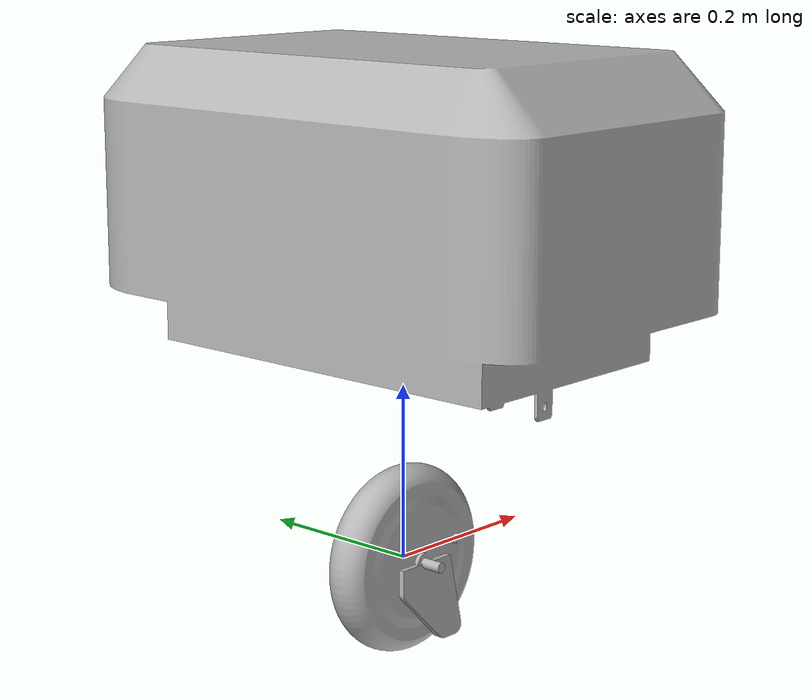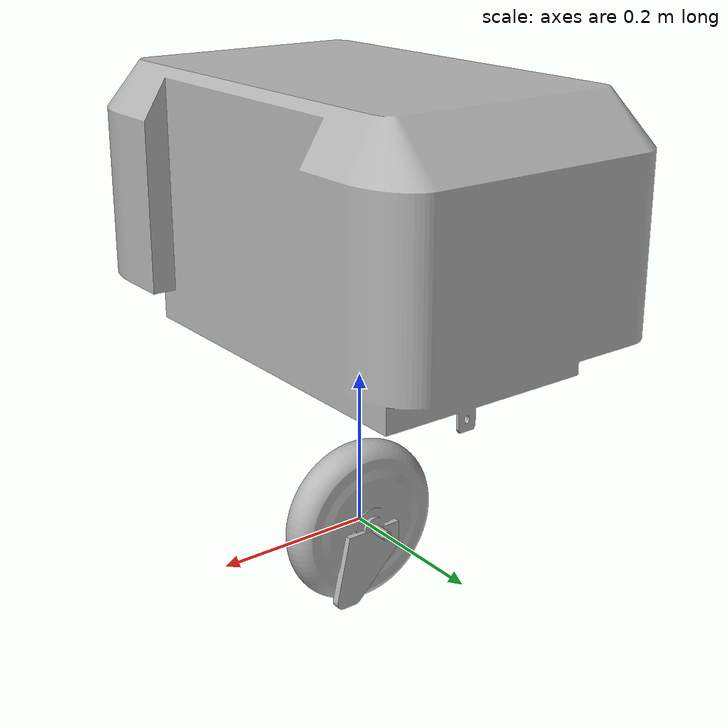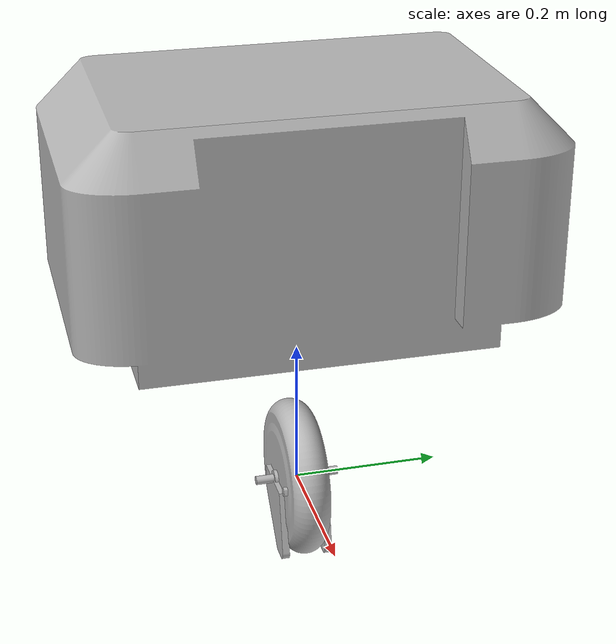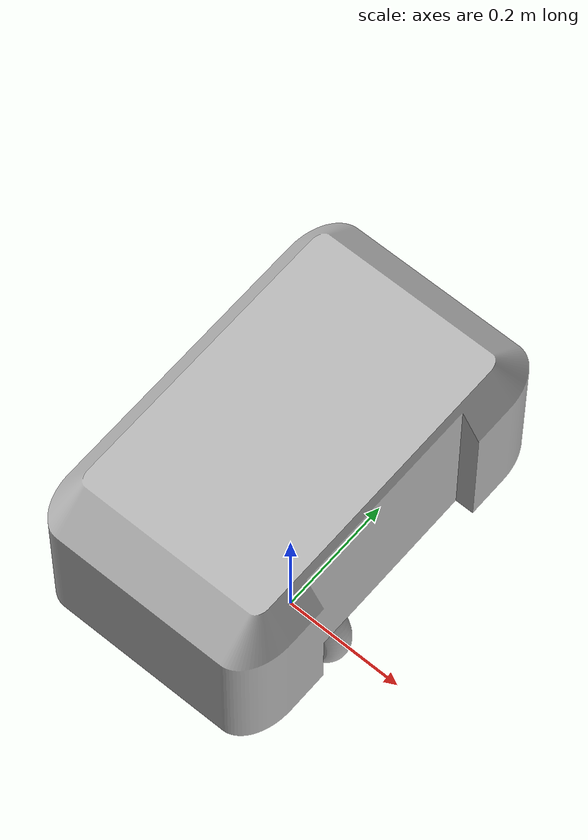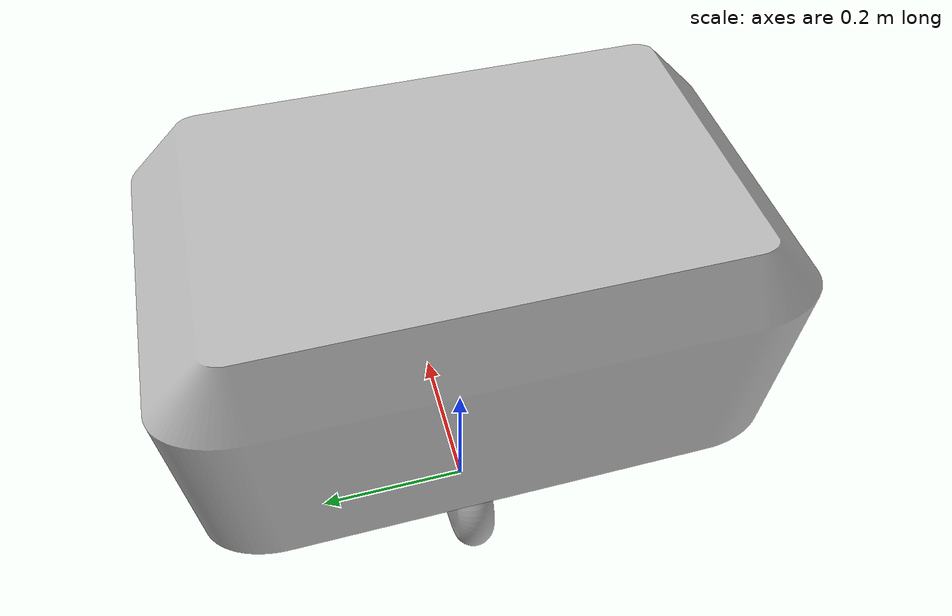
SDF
<?xml version="1.0"?>

<sdf version='1.6'>
  <model name='Trolley'>
  <static>0</static>

  <link name="base_link">
  <pose frame=''>0 0 0.3 0 -0 0</pose>

    <visual name='base_link'>
      <pose frame=''>0 0 0 0 0 0</pose>
      <geometry>
          <mesh>
            <scale> 0.5 0.8 0.8</scale>
            <uri>model://Caato/meshes/base_link.stl</uri>
          </mesh>
      </geometry>
      <material name="base_material">
        <color rgba="0.615686 0.811765 0.929412 1.0"/>
      </material>
    </visual>
    <collision name='chassis_base_link'>
      <pose frame=''>0 0 0.0625 0 0 0</pose>
      <geometry>
          <box>
            <size>0.02 0.4 0.4</size>
          </box>
      </geometry>
      <material name="base_material">
        <color rgba="0.615686 0.811765 0.929412 1.0"/>
      </material>
    </collision>
  </link>
  <gazebo reference="base_link">
    <mu1 value="0.0" />
    <mu2 value="0.0" />
    <material>Gazebo/Turquoise</material>
  </gazebo>

  <link name="inertial_link" >
    <inertial>
      <mass>1</mass>
      <pose frame=''>0 -0.085 0.0625 0 0 0</pose>
      <inertia>
       <ixx>0.2</ixx>
       <ixy>0</ixy>
       <ixz>0</ixz>
       <iyy>0.2</iyy>
       <iyz>0</iyz>
       <izz>1.0296</izz>
       </inertia>
      <pose frame=''>0 0 0 0 0 0</pose>
    </inertial>
  </link>

  <joint name="inertial_joint" type="fixed" >
    <orgin xyz="0 0 0" rpy="0 0 0" />
      <child>inertial_link</child>
      <parent>base_link</parent>
  </joint>

  <link name="imu_link"/>
  <joint name="imu_joint" type="fixed">
    <pose frame=''>0 0 0.0625 0 0 0</pose>
      <child>imu_link</child>
      <parent>base_link</parent>
  </joint>

  <link name="hokuyo_laser_scanner_1">

    <visual name='hokuyo_laser_scanner_1'>
      <pose frame=''>0 0 0 0 0 0</pose>
      <geometry>
          <mesh>
            <uri>model://Caato/meshes/hokuyo_laser_scanner.stl</uri>
          </mesh>
      </geometry>
      <material name="hokuyo_laser_scanner_material">
        <color rgba="1 0.643137 0.0313725 1.0"/>
      </material>
    </visual>
    <collision name='chassis_hokuyo_laser_scanner_1'>
      <pose frame=''>0 0 0 0 0 0</pose>
      <geometry>
          <mesh>
            <uri>model://Caato/meshes/hokuyo_laser_scanner.stl</uri>
          </mesh>
      </geometry>
      <material name="hokuyo_laser_scanner_material">
        <color rgba="1 0.643137 0.0313725 1.0"/>
      </material>
    </collision>
    <inertial>
      <pose frame=''>0 0 0 0 0 0</pose>
      <mass>0.2</mass>
      <inertia>
       <ixx>0</ixx>
       <ixy>0</ixy>
       <ixz>0</ixz>
       <iyy>0</iyy>
       <iyz>0</iyz>
       <izz>0</izz>
       </inertia>
    </inertial>
  </link>
  <gazebo reference="hokuyo_laser_scanner_1">
    <material>Gazebo/Orange</material>
  </gazebo>

  <joint name="hokuyo_laser_scanner_1_joint" type="fixed">
    <pose frame=''>0.320104 0.330104 0.05225 3.14159 0 0.785398</pose>
      <child>hokuyo_laser_scanner_1</child>
      <parent>base_link</parent>
    <axis>
      <xyz>0 0 1</xyz>
    </axis>
  </joint>

  <link name="hokuyo_laser_scanner_2">
    <visual name='hokuyo_laser_scanner_2'>
      <pose frame=''>0 0 0 0 0 0</pose>
      <geometry>
          <mesh>
            <uri>model://Caato/meshes/hokuyo_laser_scanner.stl</uri>
          </mesh>
      </geometry>
      <material name="hokuyo_laser_scanner_material">
        <color rgba="1 0.643137 0.0313725 1.0"/>
      </material>
    </visual>
    <collision name='chassis_hokuyo_laser_scanner_2'>
      <pose frame=''>0 0 0 0 0 0</pose>
      <geometry>
          <mesh>
            <uri>model://Caato/meshes/hokuyo_laser_scanner.stl</uri>
          </mesh>
      </geometry>
      <material name="hokuyo_laser_scanner_material">
        <color rgba="1 0.643137 0.0313725 1.0"/>
      </material>
    </collision>
    <inertial>
      <pose frame=''>0 0 0 0 0 0</pose>
      <mass>0</mass>
      <inertia>
       <ixx>0</ixx>
       <ixy>0</ixy>
       <ixz>0</ixz>
       <iyy>0</iyy>
       <iyz>0</iyz>
       <izz>0</izz>
       </inertia>
    </inertial>
  </link>

  <gazebo reference="hokuyo_laser_scanner_2">
    <material>Gazebo/Orange</material>
  </gazebo>

  <joint name="hokuyo_laser_scanner_2_joint" type="fixed">
    <pose frame=''>-0.320104 -0.330104 0.0525 3.14159 0 -2.355</pose>
      <child>hokuyo_laser_scanner_2</child>
      <parent>base_link</parent>
    <axis>
      <xyz>0 0 1</xyz>
    </axis>
  </joint>

  <link name="xiaomi_pro_hub_motor_1">
    <visual name='xiaomi_pro_hub_motor_1'>
      <pose frame=''>0 0 0 0 0 0</pose>
      <geometry>
          <mesh>
            <uri>model://Caato/meshes/xiaomi_pro_hub_motor.stl</uri>
          </mesh>
      </geometry>
      <material name="xiaomi_pro_hub_motor_material">
        <color rgba="0.101961 0.101961 0.101961 1.0"/>
      </material>
    </visual>
    <collision name='chassis_xiaomi_pro_hub_motor_1'>
      <pose frame=''>0 0 0 0 0 0</pose>
      <geometry>
          <mesh>
            <uri>model://Caato/meshes/xiaomi_pro_hub_motor.stl</uri>
          </mesh>
      </geometry>
      <material name="xiaomi_pro_hub_motor_material">
        <color rgba="0.101961 0.101961 0.101961 1.0"/>
      </material>
    </collision>
    <inertial>
      <pose frame=''>0 0 0 0 0 0</pose>
      <mass>3.22716</mass>
      <inertia>
       <ixx>0.5091772</ixx>
       <ixy>1.96248e-06</ixy>
       <ixz>-8.81136e-07</ixz>
       <iyy>0.509018</iyy>
       <iyz>4.58833e-07</iyz>
       <izz>0.11918076</izz>
       </inertia>
    </inertial>
  </link>

  <gazebo reference="xiaomi_pro_hub_motor_1">
    <mu1 value="1.0"/>
    <mu2 value="1.0"/>
    <kp value="10000000.0" />
    <kd value="1.0" />
    <fdir1 value="1 0 0"/>
    <material>Gazebo/Grey</material>
  </gazebo>

  <joint name="wheel_left_joint" type="continuous">
    <pose frame=''>2.00861e-05 0.206425 -0.04955 0 -0 0</pose>
      <child>xiaomi_pro_hub_motor_1</child>
      <parent>base_link</parent>
    <axis>
      <xyz>0 1 0</xyz>
    </axis>
  </joint>

  <link name="xiaomi_pro_hub_motor_2">
    <visual name='xiaomi_pro_hub_motor_2'>
      <pose frame=''>0 0 0 0 0 0</pose>
      <geometry>
          <mesh>
            <uri>model://Caato/meshes/xiaomi_pro_hub_motor.stl</uri>
          </mesh>
      </geometry>
      <material name="xiaomi_pro_hub_motor_material">
        <color rgba="0.101961 0.101961 0.101961 1.0"/>
      </material>
    </visual>
    <collision name='chassis_xiaomi_pro_hub_motor_2'>
      <pose frame=''>0 0 0 0 0 0</pose>
      <geometry>
          <mesh>
            <uri>model://Caato/meshes/xiaomi_pro_hub_motor.stl</uri>
          </mesh>
      </geometry>
      <material name="xiaomi_pro_hub_motor_material">
        <color rgba="0.101961 0.101961 0.101961 1.0"/>
      </material>
    </collision>
    <inertial>
      <pose frame=''>0 0 0 0 0 0</pose>
      <mass>3.22716</mass>
      <inertia ixx="0.5091772" ixy="1.96248e-06"  ixz="-8.81136e-07" iyy="0.569018" iyz="4.58833e-07" izz="0.118076" />
    </inertial>
  </link>

  <gazebo reference="xiaomi_pro_hub_motor_2">
    <mu1 value="1.0"/>
    <mu2 value="1.0"/>
    <kp value="10000000.0" />
    <kd value="1.0" />
    <fdir1 value="1 0 0"/>
    <material>Gazebo/Grey</material>
  </gazebo>

  <joint name="wheel_right_joint" type="continuous">
    <pose frame=''>0 -0.206425 -0.04955 0 0 0</pose>
      <child>xiaomi_pro_hub_motor_2</child>
      <parent>base_link</parent>
    <axis>
      <xyz>0 1 0</xyz>
    </axis>
  </joint>

  <!-- Caster wheels -->
  <link name="castor_wheel_mount_front" >
    <visual name='castor_wheel_mount_front'>
      <pose frame=''>0 0 0 0 0 0</pose>
      <geometry>
          <mesh>
            <uri>model://Caato/meshes/castor_mount.stl</uri>
          </mesh>
      </geometry>
      <material name="castor_mount_material">
        <color rgba="0.647059 0.647059 0.647059 1.0"/>
      </material>
    </visual>
    <collision name='chassis_castor_wheel_mount_front'>
      <pose frame=''>0 0 0 0 0 0</pose>
      <geometry>
          <mesh>
            <uri>model://Caato/meshes/castor_mount.stl</uri>
          </mesh>
      </geometry>
      <material name="castor_mount_material">
        <color rgba="0.647059 0.647059 0.647059 1.0"/>
      </material>
    </collision>
    <inertial>
      <pose frame=''>0 0 0 0 0 0</pose>
      <mass>0.01</mass>
      <inertia>
       <ixx>0</ixx>
       <ixy>0</ixy>
       <ixz>0</ixz>
       <iyy>0</iyy>
       <iyz>0</iyz>
       <izz>0</izz>
       </inertia>
    </inertial>
  </link>

  <gazebo reference="castor_wheel_mount_front" >
    <material>Gazebo/Grey</material>
  </gazebo>

  <joint name="castor_wheel_mount_front_joint"  type="fixed">
    <pose frame=''>0.26 0 -0.0225 0 0 0</pose>
      <child>castor_wheel_mount_front</child>
      <parent>base_link</parent>
    <axis>
      <xyz>0 0 1</xyz>
    </axis>
  </joint>

  <link name="castor_wheel_front">
    <visual name='castor_wheel_front'>
      <pose frame=''>0 0 0 0 0 0</pose>
      <geometry>
          <mesh>
            <uri>model://Caato/meshes/castor_wheel.stl</uri>
          </mesh>
      </geometry>
      <material name="castor_wheel_material">
        <color rgba="0.615686 0.811765 0.929412 1.0"/>
      </material>
    </visual>
    <collision name='collision_castor_wheel_front'>
      <pose frame=''>0 0 0 0 0 0</pose>
      <geometry>
          <mesh>
            <uri>model://Caato/meshes/castor_wheel.stl</uri>
          </mesh>
      </geometry>
      <material name="castor_wheel_material">
        <color rgba="0.615686 0.811765 0.929412 1.0"/>
      </material>
    </collision>
    <inertial>
      <pose frame=''>0 0 0 0 0 0</pose>
      <mass>1</mass>
      <inertia>
       <ixx>0</ixx>
       <ixy>0</ixy>
       <ixz>0</ixz>
       <iyy>0</iyy>
       <iyz>0</iyz>
       <izz>0</izz>
       </inertia>
    </inertial>
  </link>

  <joint name="castor_wheel_front_joint" type="continuous">
    <pose frame=''>0.2981 0 -0.10705 0 0 0</pose>
      <child>castor_wheel_front</child>
      <parent>base_link</parent>
    <axis>
      <xyz>0 1 0</xyz>
    </axis>
  </joint>

  <gazebo reference="castor_wheel_front">
    <mu1 value="1.0"/>
    <mu2 value="1.0"/>
    <kp value="100000.0" />
    <kd value="1.0" />
    <fdir1 value="0 0 1"/>
    <material>Gazebo/Grey</material>
  </gazebo>

  <link name="castor_wheel_mount_back" >
    <visual name='castor_wheel_mount_back'>
      <pose frame=''>0 0 0 0 0 0</pose>
      <geometry>
          <mesh>
            <uri>model://Caato/meshes/castor_mount.stl</uri>
          </mesh>
      </geometry>
      <material name="castor_mount_material">
        <color rgba="0.647059 0.647059 0.647059 1.0"/>
      </material>
    </visual>
    <collision name='collision_castor_wheel_mount_back'>
      <pose frame=''>0.26 0 -0.0125 0 0 0</pose>
      <geometry>
          <mesh>
            <uri>model://Caato/meshes/castor_mount.stl</uri>
          </mesh>
      </geometry>
      <material name="castor_mount_material">
        <color rgba="0.647059 0.647059 0.647059 1.0"/>
      </material>
    </collision>
    <inertial>
      <pose frame=''>0 0 0 0 0 0</pose>
      <mass>0.01</mass>
      <inertia>
       <ixx>0</ixx>
       <ixy>0</ixy>
       <ixz>0</ixz>
       <iyy>0</iyy>
       <iyz>0</iyz>
       <izz>0</izz>
       </inertia>
    </inertial>
  </link>

  <gazebo reference="castor_wheel_mount_back" >
    <material>Gazebo/Grey</material>
  </gazebo>

  <joint name="castor_wheel_mount_back_joint"  type="fixed">
    <pose frame=''>-0.262 0 -0.0225 0 0 0</pose>
      <child>castor_wheel_mount_back</child>
      <parent>base_link</parent>
    <axis>
      <xyz>0 0 1</xyz>
    </axis>
  </joint>

  <link name="castor_wheel_back">
    <visual name='castor_wheel_back'>
      <pose frame=''>0 0 0 0 0 0</pose>
      <geometry>
          <mesh>
            <uri>model://Caato/meshes/castor_wheel.stl</uri>
          </mesh>
      </geometry>
      <material name="castor_wheel_material">
        <color rgba="0.615686 0.811765 0.929412 1.0"/>
      </material>
    </visual>
    <collision name='collision_castor_wheel_back'>
      <pose frame=''>0 0 0 0 0 0</pose>
      <geometry>
          <mesh>
            <uri>model://Caato/meshes/castor_wheel.stl</uri>
          </mesh>
      </geometry>
      <material name="castor_wheel_material">
        <color rgba="0.615686 0.811765 0.929412 1.0"/>
      </material>
    </collision>
    <inertial>
      <pose frame=''>0 0 0 0 0 0</pose>
      <mass>1</mass>
      <inertia>
       <ixx>0</ixx>
       <ixy>0</ixy>
       <ixz>0</ixz>
       <iyy>0</iyy>
       <iyz>0</iyz>
       <izz>0</izz>
       </inertia>
    </inertial>
  </link>

  <joint name="castor_wheel_back_joint" type="continuous">
    <pose frame=''>-0.2219 0 -0.10705 0 1.46607 0</pose>
      <child>castor_wheel_back</child>
      <parent>base_link</parent>
    <axis>
      <xyz>0 1 0</xyz>
    </axis>
  </joint>

  <gazebo reference="castor_wheel_back">
    <mu1 value="1.0"/>
    <mu2 value="1.0"/>
    <kp value="100000.0" />
    <kd value="1.0" />
    <fdir1 value="0 0 1"/>
    <material>Gazebo/Grey</material>
  </gazebo>

  </model>
</sdf>
